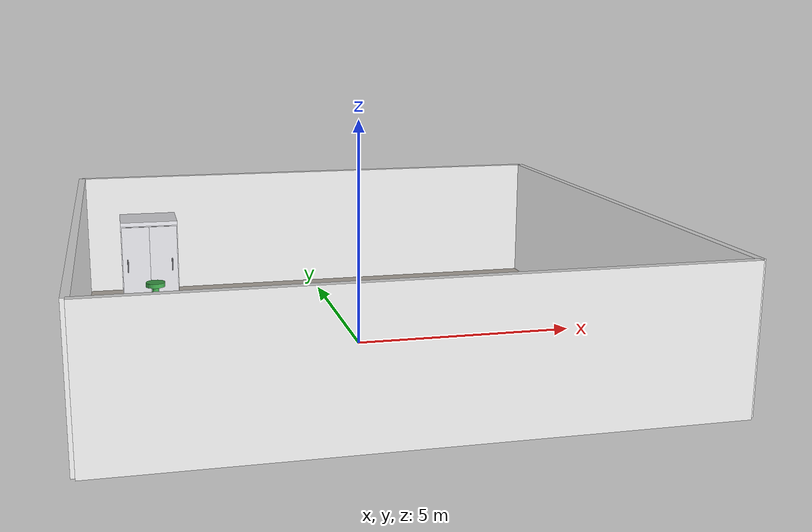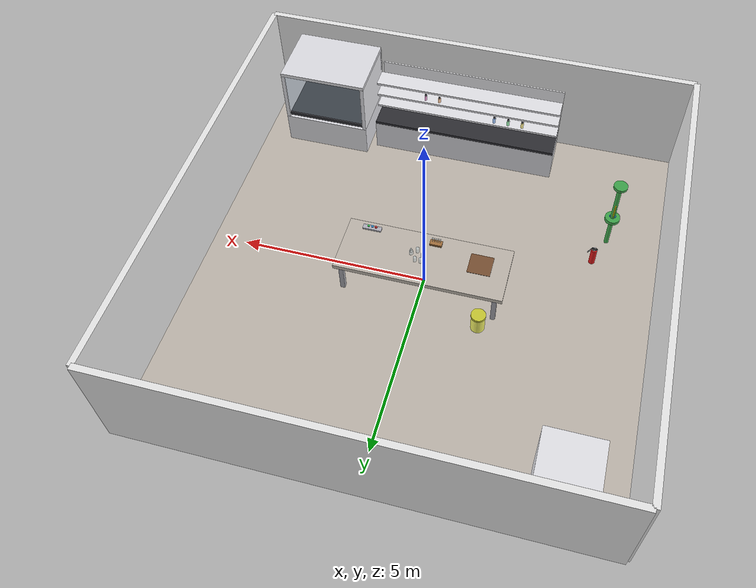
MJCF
<mujoco model="chemistry_lab">
  <compiler angle="degree" coordinate="local"/>
  <option timestep="0.002" gravity="0 0 -9.81" integrator="RK4"/>
  <size njmax="4000" nconmax="2000"/>
  <visual>
    <headlight ambient="0.35 0.35 0.35" diffuse="0.6 0.6 0.6" specular="0.2 0.2 0.2"/>
    <rgba haze="0.95 0.97 1.0 1"/>
    <quality shadowsize="2048"/>
    <global offwidth="1280" offheight="960"/>
  </visual>

  <asset>
    <texture name="floor_tex" type="2d" file="../assets/marble.png" height="512" width="512"/>
    <material name="floor_mat" texture="floor_tex" texrepeat="4 4" specular="0.1" shininess="0.2"/>

    <texture name="desktop_tex" type="2d" file="../assets/desktop.png" height="512" width="512"/>
    <material name="desktop_mat" texture="desktop_tex" texrepeat="1 1" specular="0.1" shininess="0.2"/>

    <texture name="white_wall_tex" type="2d" file="../assets/white_wall.png" height="512" width="512"/>
    <material name="white_wall_mat" texture="white_wall_tex" texrepeat="128 128" specular="0.1" shininess="0.2"/>
  </asset>

  <worldbody>
    <!-- Floor -->
    <geom name="floor" type="plane" pos="0 0 0" size="6 6 0.05"
          material="floor_mat" contype="1" conaffinity="1"/>

    <!-- Room boundary (visual walls) -->
    <geom name="wall_n" type="box" pos="0 6 1.5" size="6 0.08 1.5"
          material="white_wall_mat" contype="0" conaffinity="0"/>
    <geom name="wall_s" type="box" pos="0 -6 1.5" size="6 0.08 1.5"
          material="white_wall_mat" contype="0" conaffinity="0"/>
    <geom name="wall_e" type="box" pos="6 0 1.5" size="0.08 6 1.5"
          material="white_wall_mat" contype="0" conaffinity="0"/>
    <geom name="wall_w" type="box" pos="-6 0 1.5" size="0.08 6 1.5"
          material="white_wall_mat" contype="0" conaffinity="0"/>

    <!-- Main lab bench -->
    <body name="bench" pos="0 0 0">
      <!-- Bench top -->
      <geom name="bench_top" type="box" pos="0 0 0.9" size="2.2 0.8 0.06"
            material="desktop_mat" friction="1.2 0.01 0.001"/>
      <!-- Legs -->
      <geom name="bench_leg_fl" type="box" pos="-2.0 0.7 0.45" size="0.06 0.06 0.45"
            rgba="0.65 0.65 0.68 1"/>
      <geom name="bench_leg_fr" type="box" pos="2.0 0.7 0.45" size="0.06 0.06 0.45"
            rgba="0.65 0.65 0.68 1"/>
      <geom name="bench_leg_bl" type="box" pos="-2.0 -0.7 0.45" size="0.06 0.06 0.45"
            rgba="0.65 0.65 0.68 1"/>
      <geom name="bench_leg_br" type="box" pos="2.0 -0.7 0.45" size="0.06 0.06 0.45"
            rgba="0.65 0.65 0.68 1"/>

      <!-- Sink basin + faucet (integrated on bench) -->
      <geom name="sink_basin_outer" type="box" pos="-1.35 -0.15 0.885" size="0.35 0.25 0.03"
            rgba="0.55 0.57 0.60 1"/>
      <geom name="sink_basin_hole" type="box" pos="-1.35 -0.15 0.87" size="0.30 0.20 0.02"
            rgba="0.18 0.18 0.20 1" contype="0" conaffinity="0"/>
      <geom name="box" type="box" pos="-1.45 -0.15 0.96" size="0.30 0.3 0.01"
            rgba="0.48 0.32 0.20 1" contype="0" conaffinity="0"/>
      <!-- Gas tap manifold -->
      <geom name="gas_manifold" type="box" pos="1.55 -0.6 0.98" size="0.25 0.07 0.03"
            rgba="0.70 0.70 0.74 1"/>
      <geom name="gas_knob_1" type="cylinder" pos="1.45 -0.62 1.02" size="0.03 0.02"
            rgba="0.85 0.2 0.2 1"/>
      <geom name="gas_knob_2" type="cylinder" pos="1.55 -0.62 1.02" size="0.03 0.02"
            rgba="0.2 0.6 0.9 1"/>
      <geom name="gas_knob_3" type="cylinder" pos="1.65 -0.62 1.02" size="0.03 0.02"
            rgba="0.2 0.8 0.3 1"/>
    </body>

    <!-- Back counter with shelving -->
    <body name="back_counter" pos="0 -5 0">
      <geom name="back_counter_top" type="box" pos="0 0 0.92" size="2.59 0.549 0.059"
            rgba="0.18 0.18 0.20 1" friction="1.2 0.01 0.001"/>
      <geom name="back_counter_base" type="box" pos="0 0 0.45" size="2.6 0.55 0.45"
            rgba="0.86 0.86 0.88 1"/>
      <!-- Shelves -->
      <geom name="shelf_1" type="box" pos="0 0 1.35" size="2.6 0.25 0.03"
            rgba="0.90 0.90 0.92 1" contype="0" conaffinity="0"/>
      <geom name="shelf_2" type="box" pos="0 0 1.75" size="2.6 0.25 0.03"
            rgba="0.90 0.90 0.92 1" contype="0" conaffinity="0"/>
      <geom name="shelf_3" type="box" pos="0 0 2.15" size="2.6 0.25 0.03"
            rgba="0.90 0.90 0.92 1" contype="0" conaffinity="0"/>
      <!-- Pegboard -->
      <geom name="pegboard" type="box" pos="0 -0.5 1.65" size="2.6 0.02 0.7"
            rgba="0.95 0.95 0.96 1" contype="0" conaffinity="0"/>
    </body>

    <!-- Fume hood -->
    <body name="fume_hood" pos="4.0 -5.0 0">
      <geom name="hood_base" type="box" pos="0 0 0.45" size="1.2 0.9 0.45"
            rgba="0.88 0.88 0.90 1"/>
      <geom name="hood_worktop" type="box" pos="0 0 0.98" size="1.15 0.85 0.045"
            rgba="0.20 0.20 0.22 1"/>
      <geom name="hood_back" type="box" pos="0 -0.85 1.65" size="1.2 0.05 0.75"
            rgba="0.90 0.90 0.92 1" contype="0" conaffinity="0"/>
      <geom name="hood_sides_l" type="box" pos="-1.15 0 1.65" size="0.05 0.9 0.75"
            rgba="0.90 0.90 0.92 1" contype="0" conaffinity="0"/>
      <geom name="hood_sides_r" type="box" pos="1.15 0 1.65" size="0.05 0.9 0.75"
            rgba="0.90 0.90 0.92 1" contype="0" conaffinity="0"/>
      <geom name="hood_top" type="box" pos="0 0 2.45" size="1.2 0.9 0.05"
            rgba="0.88 0.88 0.90 1" contype="0" conaffinity="0"/>
      <!-- Front sash (glass) -->
      <geom name="hood_sash" type="box" pos="0 0.85 1.75" size="1.18 0.02 0.65"
            rgba="0.70 0.85 0.95 0.25" contype="0" conaffinity="0"/>
    </body>

    <!-- Emergency shower / eyewash station -->
    <body name="safety_station" pos="-4.5 -2.5 0">
      <geom name="safety_post" type="cylinder" pos="0 0 1.1" size="0.06 1.1"
            rgba="0.25 0.65 0.30 1"/>
      <geom name="shower_head" type="cylinder" pos="0 0 2.25" size="0.18 0.04"
            rgba="0.25 0.65 0.30 1" contype="0" conaffinity="0"/>
      <geom name="eyewash_bowl" type="cylinder" pos="0 0 1.0" size="0.20 0.05"
            rgba="0.25 0.65 0.30 1"/>
      <geom name="eyewash_nozzle_l" type="sphere" pos="-0.06 0 1.08" size="0.03"
            rgba="0.10 0.40 0.85 1" contype="0" conaffinity="0"/>
      <geom name="eyewash_nozzle_r" type="sphere" pos="0.06 0 1.08" size="0.03"
            rgba="0.10 0.40 0.85 1" contype="0" conaffinity="0"/>
      <geom name="pull_handle" type="capsule" fromto="0 0.15 1.65 0 0.15 1.25"
            size="0.02" rgba="0.85 0.85 0.10 1" contype="0" conaffinity="0"/>
    </body>

    <!-- Fire extinguisher (movable) -->
    <body name="fire_extinguisher" pos="-4.2 -1.6 0.15">
      <freejoint/>
      <geom name="ext_body" type="cylinder" pos="0 0 0.25" size="0.08 0.25"
            rgba="0.85 0.10 0.10 1" friction="0.9 0.01 0.001" density="700"/>
      <geom name="ext_neck" type="cylinder" pos="0 0 0.53" size="0.04 0.05"
            rgba="0.75 0.75 0.78 1" density="700"/>
      <geom name="ext_handle" type="box" pos="0 0.05 0.60" size="0.08 0.02 0.02"
            rgba="0.10 0.10 0.10 1" density="500"/>
      <geom name="ext_hose" type="capsule" fromto="0.05 0.0 0.58 0.16 0.08 0.48"
            size="0.015" rgba="0.10 0.10 0.10 1" density="400"/>
    </body>

    <!-- Test tube rack (movable) -->
    <body name="test_tube_rack" pos="-0.2 -0.5 0.98">
      <freejoint/>
      <geom name="rack_base" type="box" pos="0 0 0.015" size="0.16 0.08 0.015"
            rgba="0.65 0.45 0.25 1" density="700"/>
      <geom name="rack_top" type="box" pos="0 0 0.06" size="0.16 0.08 0.01"
            rgba="0.65 0.45 0.25 1" density="700"/>
      <!-- Test tubes (thin cylinders) -->
      <geom name="tube_1" type="cylinder" pos="-0.10 -0.03 0.13" size="0.012 0.07"
            rgba="0.70 0.90 1.00 0.25" density="400"/>
      <geom name="tube_2" type="cylinder" pos="-0.05 -0.03 0.13" size="0.012 0.07"
            rgba="0.70 0.90 1.00 0.25" density="400"/>
      <geom name="tube_3" type="cylinder" pos="0.00 -0.03 0.13" size="0.012 0.07"
            rgba="0.70 0.90 1.00 0.25" density="400"/>
      <geom name="tube_4" type="cylinder" pos="0.05 -0.03 0.13" size="0.012 0.07"
            rgba="0.70 0.90 1.00 0.25" density="400"/>
      <geom name="tube_5" type="cylinder" pos="0.10 -0.03 0.13" size="0.012 0.07"
            rgba="0.70 0.90 1.00 0.25" density="400"/>
      <!-- Colored liquid (visual-only inserts) -->
      <geom name="tube_1_liquid" type="cylinder" pos="-0.10 -0.03 0.105" size="0.010 0.035"
            rgba="0.20 0.60 0.95 0.55" contype="0" conaffinity="0"/>
      <geom name="tube_2_liquid" type="cylinder" pos="-0.05 -0.03 0.095" size="0.010 0.025"
            rgba="0.95 0.35 0.20 0.55" contype="0" conaffinity="0"/>
      <geom name="tube_3_liquid" type="cylinder" pos="0.00 -0.03 0.11" size="0.010 0.04"
            rgba="0.25 0.85 0.35 0.55" contype="0" conaffinity="0"/>
    </body>

    <!-- Beaker1 (movable) -->
    <body name="beaker1" pos="0.2 -0.15 0.98">
      <freejoint/>
      <geom name="beaker1_glass" type="cylinder" pos="0 0 0.07" size="0.045 0.07"
            rgba="0.70 0.90 1.00 0.25" density="400" friction="0.6 0.01 0.001"/>
      <geom name="beaker1_liquid" type="cylinder" pos="0 0 0.045" size="0.043 0.04"
            rgba="0.15 0.55 0.95 0.6" contype="0" conaffinity="0"/>
    </body>

    <!-- Beaker2 (movable) -->
    <body name="beaker2" pos="0.2  0.15 0.98">
      <freejoint/>
      <geom name="beaker2_glass" type="cylinder" pos="0 0 0.07" size="0.045 0.07"
            rgba="0.70 0.90 1.00 0.25" density="400" friction="0.6 0.01 0.001"/>
      <geom name="beaker2_liquid" type="cylinder" pos="0 0 0.045" size="0.043 0.04"
            rgba="0.5 0.75 0.95 0.6" contype="0" conaffinity="0"/>
    </body>

    <!-- Beaker3 (movable) -->
    <body name="beaker3" pos="0.05  0.15 0.98">
      <freejoint/>
      <geom name="beaker3_glass" type="cylinder" pos="0 0 0.07" size="0.045 0.07"
            rgba="0.70 0.90 1.00 0.25" density="400" friction="0.6 0.01 0.001"/>
      <geom name="beaker3_liquid" type="cylinder" pos="0 0 0.045" size="0.043 0.04"
            rgba="0.5 0.75 0.5 0.6" contype="0" conaffinity="0"/>
    </body>

    <!-- Erlenmeyer flask (approximated with stacked cylinders; movable) -->
    <body name="erlenmeyer_flask" pos="0.35 -0.05 0.98">
      <freejoint/>
      <geom name="flask_base" type="cylinder" pos="0 0 0.045" size="0.05 0.045"
            rgba="0.70 0.90 1.00 0.25" density="400"/>
      <geom name="flask_mid" type="cylinder" pos="0 0 0.095" size="0.035 0.05"
            rgba="0.70 0.90 1.00 0.25" density="400"/>
      <geom name="flask_neck" type="cylinder" pos="0 0 0.155" size="0.018 0.06"
            rgba="0.70 0.90 1.00 0.25" density="400"/>
      <geom name="flask_liquid" type="cylinder" pos="0 0 0.04" size="0.045 0.03"
            rgba="0.85 0.25 0.65 0.6" contype="0" conaffinity="0"/>
    </body>

    <!-- Graduated cylinder (movable) -->
    <body name="graduated_cylinder" pos="0.05 0.05 0.98">
      <freejoint/>
      <geom name="grad_cyl_body" type="cylinder" pos="0 0 0.11" size="0.018 0.11"
            rgba="0.70 0.90 1.00 0.25" density="400"/>
      <geom name="grad_cyl_base" type="cylinder" pos="0 0 0.01" size="0.04 0.01"
            rgba="0.70 0.90 1.00 0.25" density="400"/>
      <geom name="grad_cyl_liquid" type="cylinder" pos="0 0 0.07" size="0.016 0.06"
            rgba="0.95 0.80 0.20 0.6" contype="0" conaffinity="0"/>
    </body>

    <!-- Chemical waste bin (movable) -->
    <body name="waste_bin" pos="-1.7 1.2 0.2">
      <freejoint/>
      <geom name="bin_body" type="cylinder" pos="0 0 0.25" size="0.18 0.25"
            rgba="0.95 0.95 0.40 1" density="600"/>
      <geom name="bin_lid" type="cylinder" pos="0 0 0.53" size="0.19 0.03"
            rgba="0.80 0.80 0.20 1" density="600"/>
    </body>

    <!-- Refrigerator / chemical storage cabinet -->
    <body name="storage_cabinet" pos="-4.4 5 0" quat="0 0 0 1">
      <geom name="cab_body" type="box" pos="0 0 1.0" size="0.7 0.6 1.0"
            rgba="0.92 0.92 0.94 1"/>
      <geom name="cab_door_left" type="box" pos="-0.34 0.61 1.0" size="0.34 0.02 0.98"
            rgba="0.88 0.88 0.90 1" contype="0" conaffinity="0"/>
      <geom name="cab_door_right" type="box" pos="0.34 0.61 1.0" size="0.34 0.02 0.98"
            rgba="0.88 0.88 0.90 1" contype="0" conaffinity="0"/>
      <geom name="cab_handle_l" type="capsule" fromto="-0.55 0.64 1.15 -0.55 0.64 0.85"
            size="0.015" rgba="0.65 0.65 0.68 1" contype="0" conaffinity="0"/>
      <geom name="cab_handle_r" type="capsule" fromto="0.55 0.64 1.15 0.55 0.64 0.85"
            size="0.015" rgba="0.65 0.65 0.68 1" contype="0" conaffinity="0"/>
      <geom name="cab_top" type="box" pos="0 0 2.05" size="0.7 0.6 0.05"
            rgba="0.90 0.90 0.92 1" contype="0" conaffinity="0"/>
    </body>

    <!-- Small chemical bottles on the back shelves (static, visual) -->
    <body name="shelf_bottles" pos="0 -5 0">
      <geom name="bottle_1" type="cylinder" pos="-1.6 0.15 1.44" size="0.04 0.10"
            rgba="0.95 0.85 0.20 0.6" contype="0" conaffinity="0"/>
      <geom name="bottle_1_cap" type="cylinder" pos="-1.6 0.15 1.56" size="0.03 0.02"
            rgba="0.10 0.10 0.12 1" contype="0" conaffinity="0"/>

      <geom name="bottle_2" type="cylinder" pos="-1.2 0.15 1.44" size="0.04 0.10"
            rgba="0.20 0.85 0.35 0.55" contype="0" conaffinity="0"/>
      <geom name="bottle_2_cap" type="cylinder" pos="-1.2 0.15 1.56" size="0.03 0.02"
            rgba="0.10 0.10 0.12 1" contype="0" conaffinity="0"/>

      <geom name="bottle_3" type="cylinder" pos="-0.8 0.15 1.44" size="0.04 0.10"
            rgba="0.25 0.55 0.95 0.55" contype="0" conaffinity="0"/>
      <geom name="bottle_3_cap" type="cylinder" pos="-0.8 0.15 1.56" size="0.03 0.02"
            rgba="0.10 0.10 0.12 1" contype="0" conaffinity="0"/>

      <geom name="bottle_4" type="cylinder" pos="0.8 0.15 1.84" size="0.035 0.09"
            rgba="0.95 0.55 0.20 0.55" contype="0" conaffinity="0"/>
      <geom name="bottle_4_cap" type="cylinder" pos="0.8 0.15 1.95" size="0.028 0.02"
            rgba="0.10 0.10 0.12 1" contype="0" conaffinity="0"/>

      <geom name="bottle_5" type="cylinder" pos="1.2 0.15 1.84" size="0.035 0.09"
            rgba="0.85 0.25 0.65 0.55" contype="0" conaffinity="0"/>
      <geom name="bottle_5_cap" type="cylinder" pos="1.2 0.15 1.95" size="0.028 0.02"
            rgba="0.10 0.10 0.12 1" contype="0" conaffinity="0"/>
    </body>

    <!-- Camera -->
    <camera name="main_cam" pos="6 4 3.2" xyaxes="-0.6 0.8 0  -0.25 -0.19 0.95"/>
    <camera name="thermal_cam" pos="0 -2.0 1.8" xyaxes="1 0 0  0 0.6 0.8"/>
  </worldbody>
</mujoco>
